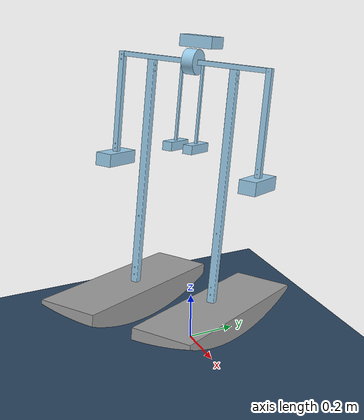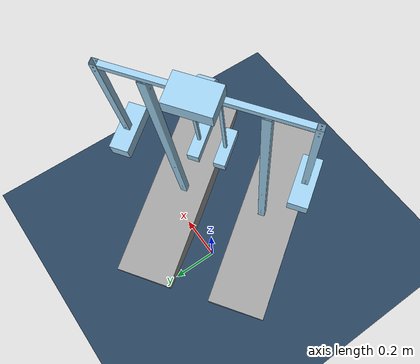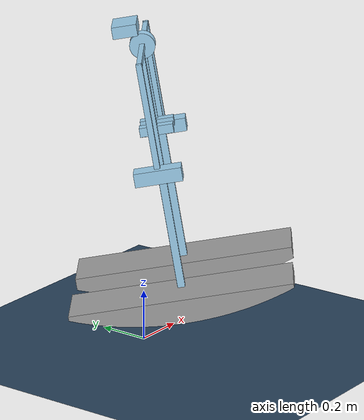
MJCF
<mujoco model="scene">
  <compiler angle="radian"/>

  <visual>
    <global azimuth="160" elevation="-20"/>
    <headlight ambient="0.3 0.3 0.3" diffuse="0.6 0.6 0.6" specular="0 0 0"/>
    <rgba haze="0.15 0.25 0.35 1"/>
  </visual>

  <default>
    <default class="Bigfoot">
      <joint armature="0.005" frictionloss="0.1"/>
      <general ctrllimited="true" ctrlrange="-25 25"/>
      <default class="visual">
        <geom type="mesh" contype="0" conaffinity="0" group="2"/>
      </default>
      <default class="collision">
        <geom group="3"/>
      </default>
    </default>
  </default>

  <asset>
    <texture type="skybox" colorspace="auto" builtin="gradient" rgb1="0.3 0.5 0.7" rgb2="0 0 0" width="512" height="3072"/>
    <texture type="2d" colorspace="auto" name="groundplane" builtin="checker" mark="edge" rgb1="0.2 0.3 0.4" rgb2="0.1 0.2 0.3" markrgb="0.8 0.8 0.8" width="300" height="300"/>
    <material name="simplified_motor___arm_rod_material" rgba="0.615686 0.811765 0.929412 1"/>
    <material name="cf_rod___leg_material" rgba="0.615686 0.811765 0.929412 1"/>
    <material name="raspberry_pi___battery___motor_cover_material" rgba="0.615686 0.811765 0.929412 1"/>
    <material name="footstl_scaled_v4_mirrored_material" rgba="0.627451 0.627451 0.627451 1"/>
    <material name="arm_rod_material" rgba="0.615686 0.811765 0.929412 1"/>
    <material name="exo_hip_rod_material" rgba="0.615686 0.811765 0.929412 1"/>
    <material name="hip_inner_right_material" rgba="0.615686 0.811765 0.929412 1"/>
    <material name="motor_material" rgba="0.615686 0.811765 0.929412 1"/>
    <material name="battery_model_material" rgba="0.615686 0.811765 0.929412 1"/>
    <material name="footstl_scaled_v4_material" rgba="0.627451 0.627451 0.627451 1"/>
    <material name="groundplane" texture="groundplane" texuniform="true" texrepeat="5 5" reflectance="0.2"/>
    <mesh name="footstl_scaled_v4_mirrored" file="/home/rml3/Documents/nick/LEGO-MuJoCo/Bigfoot/assets/footstl_scaled_v4_mirrored.stl"/>
    <mesh name="raspberry_pi___battery___motor_cover" file="/home/rml3/Documents/nick/LEGO-MuJoCo/Bigfoot/assets/raspberry_pi___battery___motor_cover.stl"/>
    <mesh name="motor" file="/home/rml3/Documents/nick/LEGO-MuJoCo/Bigfoot/assets/motor.stl"/>
    <mesh name="battery_model" file="/home/rml3/Documents/nick/LEGO-MuJoCo/Bigfoot/assets/battery_model.stl"/>
    <mesh name="simplified_motor___arm_rod" file="/home/rml3/Documents/nick/LEGO-MuJoCo/Bigfoot/assets/simplified_motor___arm_rod.stl"/>
    <mesh name="arm_rod" file="/home/rml3/Documents/nick/LEGO-MuJoCo/Bigfoot/assets/arm_rod.stl"/>
    <mesh name="footstl_scaled_v4" file="/home/rml3/Documents/nick/LEGO-MuJoCo/Bigfoot/assets/footstl_scaled_v4.stl"/>
    <mesh name="hip_inner_right" file="/home/rml3/Documents/nick/LEGO-MuJoCo/Bigfoot/assets/hip_inner_right.stl"/>
    <mesh name="exo_hip_rod" file="/home/rml3/Documents/nick/LEGO-MuJoCo/Bigfoot/assets/exo_hip_rod.stl"/>
    <mesh name="cf_rod___leg" file="/home/rml3/Documents/nick/LEGO-MuJoCo/Bigfoot/assets/cf_rod___leg.stl"/>
    <mesh name="right_full_mesh" file="/home/rml3/Documents/nick/LEGO-MuJoCo/foot_section_out_v3/right_foot_full.stl"/>
    <mesh name="left_full_mesh" file="/home/rml3/Documents/nick/LEGO-MuJoCo/foot_section_out_v3/left_foot_full.stl"/>
  </asset>

  <worldbody>
    <geom name="floor" size="0 0 0.05" type="plane" material="groundplane"/>
    <light pos="0 0 3.5" dir="0 0 -1" type="directional"/>
    <body name="motor" childclass="Bigfoot" pos="0 0 1.2" quat="0.951184 -0.0789619 -0.0246035 0.297335">
      <inertial pos="-0.00509362 0.00733735 -0.369416" quat="0.710837 0.0556218 0.069142 0.697736" mass="4.76" diaginertia="0.948011 0.810515 0.230967"/>
      <joint name="motor_freejoint" type="free" armature="0" frictionloss="0"/>
      <geom class="visual" pos="-0.30932 0 0" quat="0.5 0.5 0.5 0.5" material="simplified_motor___arm_rod_material" mesh="simplified_motor___arm_rod"/>
      <geom class="collision" pos="-0.30932 0 0" quat="0.5 0.5 0.5 0.5" type="mesh" material="simplified_motor___arm_rod_material" mesh="simplified_motor___arm_rod"/>
      <geom class="visual" pos="-0.179383 0 -0.9239" material="cf_rod___leg_material" mesh="cf_rod___leg"/>
      <geom class="collision" pos="-0.179383 0 -0.9239" type="mesh" material="cf_rod___leg_material" mesh="cf_rod___leg"/>
      <geom class="visual" pos="0 0.0535 0.0992" quat="0 1 0 0" material="raspberry_pi___battery___motor_cover_material" mesh="raspberry_pi___battery___motor_cover"/>
      <geom class="collision" pos="0 0.0535 0.0992" quat="0 1 0 0" type="mesh" material="raspberry_pi___battery___motor_cover_material" mesh="raspberry_pi___battery___motor_cover"/>
      <geom name="right_foot_1" class="visual" pos="-0.0859989 0.00071241 -0.928098" quat="-0.707107 0 0 0.707107" material="footstl_scaled_v4_mirrored_material" mesh="right_full_mesh"/>
      <geom name="right_foot_1_col" class="collision" pos="-0.0859989 0.00071241 -0.928098" quat="-0.707107 0 0 0.707107" type="mesh" material="footstl_scaled_v4_mirrored_material" mesh="right_full_mesh"/>
      <geom class="visual" pos="0.320432 0 0.0095" quat="0 0 0 1" material="arm_rod_material" mesh="arm_rod"/>
      <geom class="collision" pos="0.320432 0 0.0095" quat="0 0 0 1" type="mesh" material="arm_rod_material" mesh="arm_rod"/>
      <geom class="visual" pos="-0.045 0 -0.3093" quat="1 0 0 0" material="exo_hip_rod_material" mesh="exo_hip_rod"/>
      <geom class="collision" pos="-0.045 0 -0.3093" quat="1 0 0 0" type="mesh" material="exo_hip_rod_material" mesh="exo_hip_rod"/>
      <geom class="visual" pos="-0.045 0 -0.3443" quat="1 0 0 0" material="hip_inner_right_material" mesh="hip_inner_right"/>
      <geom class="collision" pos="-0.045 0 -0.3443" quat="1 0 0 0" type="mesh" material="hip_inner_right_material" mesh="hip_inner_right"/>
      <geom class="visual" pos="-0.025 0 0" quat="0.707107 0 0.707107 0" material="motor_material" mesh="motor"/>
      <geom class="collision" pos="-0.025 0 0" quat="0.707107 0 0.707107 0" type="mesh" material="motor_material" mesh="motor"/>
      <geom class="visual" pos="0.320432 0 -0.4495" quat="0.707107 0 0 -0.707107" material="battery_model_material" mesh="battery_model"/>
      <geom class="collision" pos="0.320432 0 -0.4495" quat="0.707107 0 0 -0.707107" type="mesh" material="battery_model_material" mesh="battery_model"/>
      <body name="simplified_motor___arm_rod" pos="0.025 0 0" quat="0 -0.707107 0 0.707107">
        <inertial pos="0.527526 -0.000826262 0.0179106" quat="0.409423 0.577372 0.577532 0.406782" mass="3.42" diaginertia="0.640383 0.518277 0.211397"/>
        <joint name="hip" pos="0 0 0" axis="0 0 1"/>
        <geom class="visual" pos="0.3443 0 -0.02" quat="0 0.707107 0 -0.707107" material="hip_inner_right_material" mesh="hip_inner_right"/>
        <geom class="collision" pos="0.3443 0 -0.02" quat="0 0.707107 0 -0.707107" type="mesh" material="hip_inner_right_material" mesh="hip_inner_right"/>
        <geom class="visual" pos="-0.0095 0 0.345432" quat="0 -0.707107 0 0.707107" material="arm_rod_material" mesh="arm_rod"/>
        <geom class="collision" pos="-0.0095 0 0.345432" quat="0 -0.707107 0 0.707107" type="mesh" material="arm_rod_material" mesh="arm_rod"/>
        <geom class="visual" pos="0.9239 0 -0.154383" quat="0 0.707107 0 -0.707107" material="cf_rod___leg_material" mesh="cf_rod___leg"/>
        <geom class="collision" pos="0.9239 0 -0.154383" quat="0 0.707107 0 -0.707107" type="mesh" material="cf_rod___leg_material" mesh="cf_rod___leg"/>
        <geom class="visual" pos="0 0 -0.28432" quat="1 0 0 0" material="simplified_motor___arm_rod_material" mesh="simplified_motor___arm_rod"/>
        <geom class="collision" pos="0 0 -0.28432" quat="1 0 0 0" type="mesh" material="simplified_motor___arm_rod_material" mesh="simplified_motor___arm_rod"/>
        <geom name="left_foot_1" class="visual" pos="0.928098 -0.000714627 -0.0609979" quat="0.5 -0.5 -0.5 0.5" material="footstl_scaled_v4_material" mesh="left_full_mesh"/>
        <geom name="left_foot_1_col" class="collision" pos="0.928098 -0.000714627 -0.0609979" quat="0.5 -0.5 -0.5 0.5" type="mesh" material="footstl_scaled_v4_material" mesh="left_full_mesh"/>
        <geom class="visual" pos="0.4495 0 0.345432" quat="0.5 0.5 -0.5 -0.5" material="battery_model_material" mesh="battery_model"/>
        <geom class="collision" pos="0.4495 0 0.345432" quat="0.5 0.5 -0.5 -0.5" type="mesh" material="battery_model_material" mesh="battery_model"/>
        <geom class="visual" pos="0.3093 0 -0.02" quat="0 0.707107 0 -0.707107" material="exo_hip_rod_material" mesh="exo_hip_rod"/>
        <geom class="collision" pos="0.3093 0 -0.02" quat="0 0.707107 0 -0.707107" type="mesh" material="exo_hip_rod_material" mesh="exo_hip_rod"/>
      </body>
    </body>
  </worldbody>

  <actuator>
    <general name="hip" class="Bigfoot" joint="hip"/>
  </actuator>
</mujoco>
